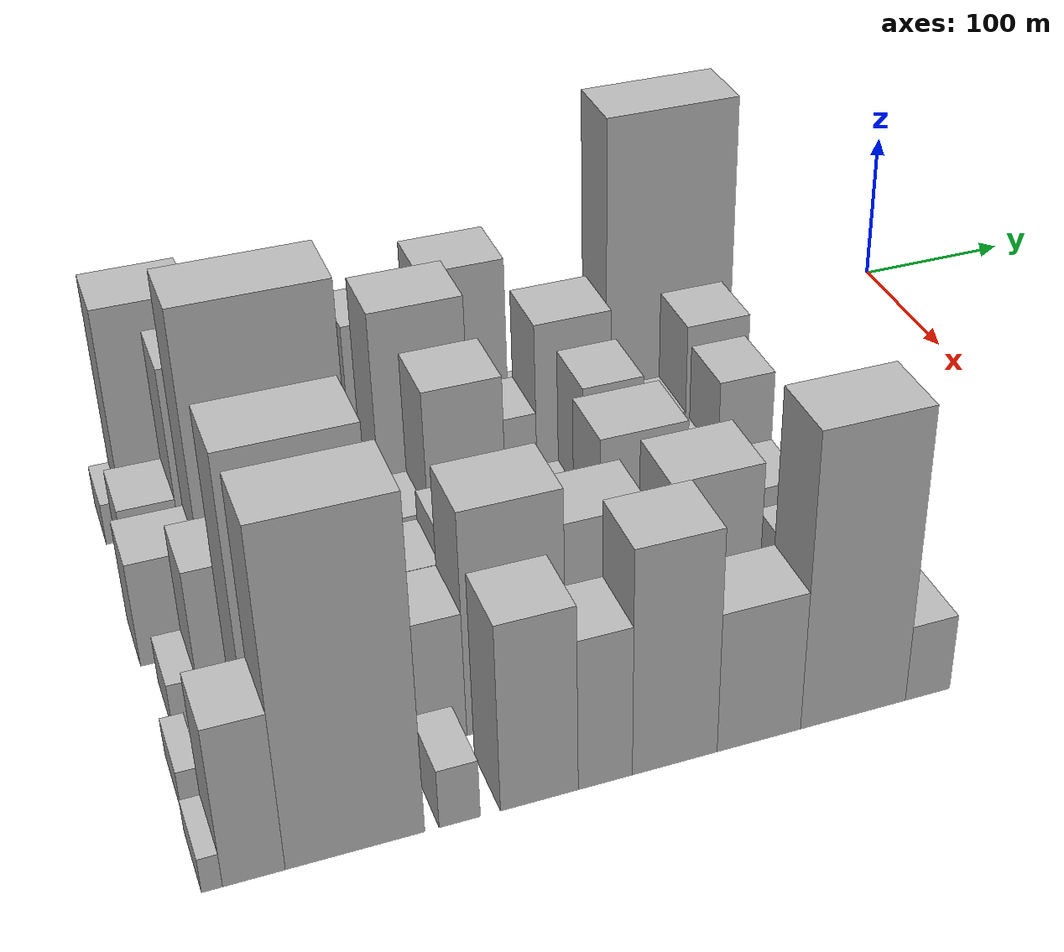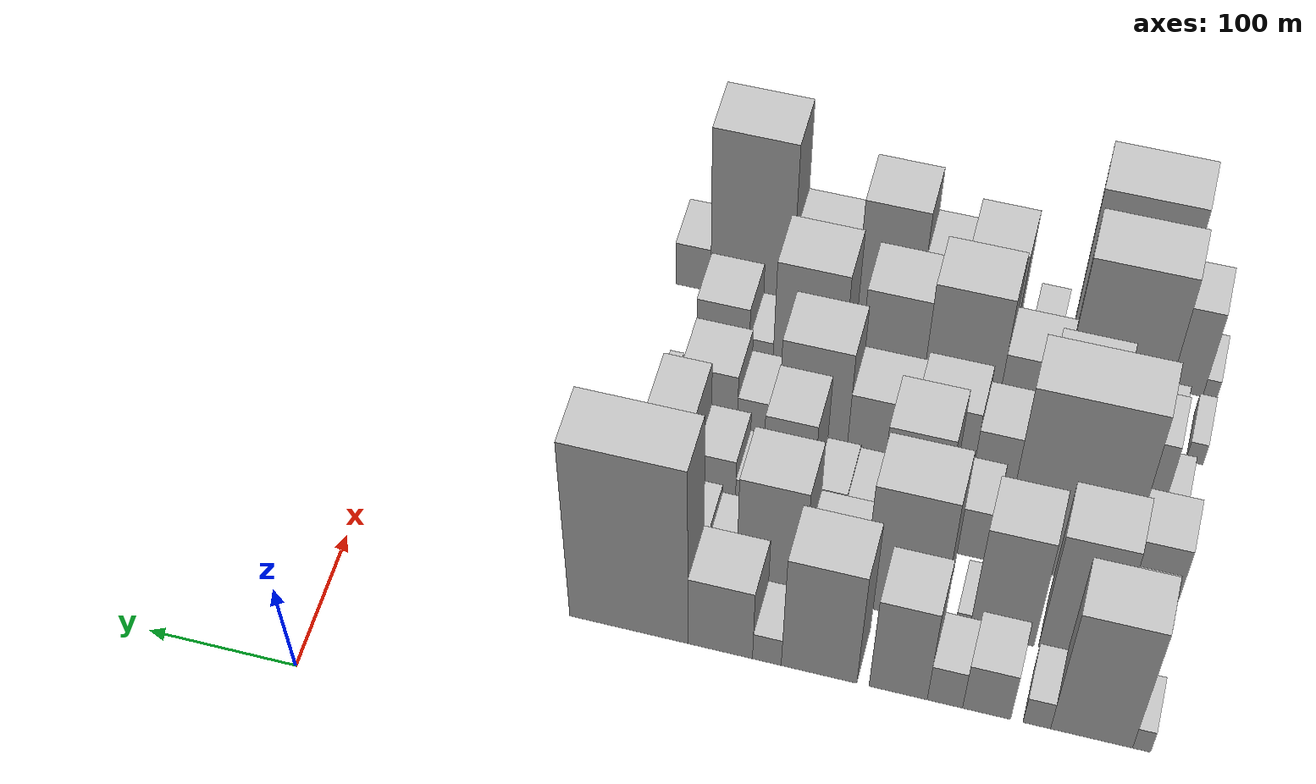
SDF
<sdf version="1.6">
 <world name="default">
  <model name="building_13">
   <static>1</static>
   <pose>100.0000 -533.1049 0 0.000000 0.000000 0.000000</pose>
   <link name="link">
    <pose>0 0 13.50 0 0 0</pose>
    <collision name="collision"><geometry><box><size>40.0000 11.3927 27.0000</size></box></geometry></collision>
    <visual name="visual">
     <cast_shadows>0</cast_shadows>
     <geometry><box><size>40.0000 11.3927 27.0000</size></box></geometry>
     <material>
      <script>
       <uri>model://HANNAS_wall/materials/scripts</uri>
       <uri>model://HANNAS_wall/materials/textures</uri>
       <name>vrc/HANNAS_wall</name>
      </script>
     </material>
    </visual>
   </link>
  </model>
  <model name="building_14">
   <static>1</static>
   <pose>100.0000 -501.3403 0 0.000000 0.000000 0.000000</pose>
   <link name="link">
    <pose>0 0 75.00 0 0 0</pose>
    <collision name="collision"><geometry><box><size>40.0000 52.1366 150.0000</size></box></geometry></collision>
    <visual name="visual">
     <cast_shadows>0</cast_shadows>
     <geometry><box><size>40.0000 52.1366 150.0000</size></box></geometry>
     <material>
      <script>
       <uri>model://HANNAS_wall/materials/scripts</uri>
       <uri>model://HANNAS_wall/materials/textures</uri>
       <name>vrc/HANNAS_wall</name>
      </script>
     </material>
    </visual>
   </link>
  </model>
  <model name="building_15">
   <static>1</static>
   <pose>100.0000 -466.4568 0 0.000000 0.000000 0.000000</pose>
   <link name="link">
    <pose>0 0 16.50 0 0 0</pose>
    <collision name="collision"><geometry><box><size>40.0000 17.6303 33.0000</size></box></geometry></collision>
    <visual name="visual">
     <cast_shadows>0</cast_shadows>
     <geometry><box><size>40.0000 17.6303 33.0000</size></box></geometry>
     <material>
      <script>
       <uri>model://HANNAS_wall/materials/scripts</uri>
       <uri>model://HANNAS_wall/materials/textures</uri>
       <name>vrc/HANNAS_wall</name>
      </script>
     </material>
    </visual>
   </link>
  </model>
  <model name="building_16">
   <static>1</static>
   <pose>100.0000 -434.1845 0 0.000000 0.000000 0.000000</pose>
   <link name="link">
    <pose>0 0 28.50 0 0 0</pose>
    <collision name="collision"><geometry><box><size>40.0000 30.9145 57.0000</size></box></geometry></collision>
    <visual name="visual">
     <cast_shadows>0</cast_shadows>
     <geometry><box><size>40.0000 30.9145 57.0000</size></box></geometry>
     <material>
      <script>
       <uri>model://HANNAS_wall/materials/scripts</uri>
       <uri>model://HANNAS_wall/materials/textures</uri>
       <name>vrc/HANNAS_wall</name>
      </script>
     </material>
    </visual>
   </link>
  </model>
  <model name="building_17">
   <static>1</static>
   <pose>100.0000 -407.2969 0 0.000000 0.000000 0.000000</pose>
   <link name="link">
    <pose>0 0 22.50 0 0 0</pose>
    <collision name="collision"><geometry><box><size>40.0000 22.8605 45.0000</size></box></geometry></collision>
    <visual name="visual">
     <cast_shadows>0</cast_shadows>
     <geometry><box><size>40.0000 22.8605 45.0000</size></box></geometry>
     <material>
      <script>
       <uri>model://HANNAS_wall/materials/scripts</uri>
       <uri>model://HANNAS_wall/materials/textures</uri>
       <name>vrc/HANNAS_wall</name>
      </script>
     </material>
    </visual>
   </link>
  </model>
  <model name="building_18">
   <static>1</static>
   <pose>100.0000 -376.9645 0 0.000000 0.000000 0.000000</pose>
   <link name="link">
    <pose>0 0 55.50 0 0 0</pose>
    <collision name="collision"><geometry><box><size>40.0000 37.8044 111.0000</size></box></geometry></collision>
    <visual name="visual">
     <cast_shadows>0</cast_shadows>
     <geometry><box><size>40.0000 37.8044 111.0000</size></box></geometry>
     <material>
      <script>
       <uri>model://HANNAS_wall/materials/scripts</uri>
       <uri>model://HANNAS_wall/materials/textures</uri>
       <name>vrc/HANNAS_wall</name>
      </script>
     </material>
    </visual>
   </link>
  </model>
  <model name="building_19">
   <static>1</static>
   <pose>100.0000 -325.2309 0 0.000000 0.000000 0.000000</pose>
   <link name="link">
    <pose>0 0 67.50 0 0 0</pose>
    <collision name="collision"><geometry><box><size>40.0000 49.6627 135.0000</size></box></geometry></collision>
    <visual name="visual">
     <cast_shadows>0</cast_shadows>
     <geometry><box><size>40.0000 49.6627 135.0000</size></box></geometry>
     <material>
      <script>
       <uri>model://HANNAS_wall/materials/scripts</uri>
       <uri>model://HANNAS_wall/materials/textures</uri>
       <name>vrc/HANNAS_wall</name>
      </script>
     </material>
    </visual>
   </link>
  </model>
  <model name="building_20">
   <static>1</static>
   <pose>100.0000 -290.9320 0 0.000000 0.000000 0.000000</pose>
   <link name="link">
    <pose>0 0 16.50 0 0 0</pose>
    <collision name="collision"><geometry><box><size>40.0000 18.9351 33.0000</size></box></geometry></collision>
    <visual name="visual">
     <cast_shadows>0</cast_shadows>
     <geometry><box><size>40.0000 18.9351 33.0000</size></box></geometry>
     <material>
      <script>
       <uri>model://HANNAS_wall/materials/scripts</uri>
       <uri>model://HANNAS_wall/materials/textures</uri>
       <name>vrc/HANNAS_wall</name>
      </script>
     </material>
    </visual>
   </link>
  </model>
  <model name="building_21">
   <static>1</static>
   <pose>100.0000 -260.0530 0 0.000000 0.000000 0.000000</pose>
   <link name="link">
    <pose>0 0 42.00 0 0 0</pose>
    <collision name="collision"><geometry><box><size>40.0000 42.8229 84.0000</size></box></geometry></collision>
    <visual name="visual">
     <cast_shadows>0</cast_shadows>
     <geometry><box><size>40.0000 42.8229 84.0000</size></box></geometry>
     <material>
      <script>
       <uri>model://HANNAS_wall/materials/scripts</uri>
       <uri>model://HANNAS_wall/materials/textures</uri>
       <name>vrc/HANNAS_wall</name>
      </script>
     </material>
    </visual>
   </link>
  </model>
  <model name="building_22">
   <static>1</static>
   <pose>100.0000 -198.9923 0 0.000000 0.000000 0.000000</pose>
   <link name="link">
    <pose>0 0 105.00 0 0 0</pose>
    <collision name="collision"><geometry><box><size>40.0000 79.2986 210.0000</size></box></geometry></collision>
    <visual name="visual">
     <cast_shadows>0</cast_shadows>
     <geometry><box><size>40.0000 79.2986 210.0000</size></box></geometry>
     <material>
      <script>
       <uri>model://HANNAS_wall/materials/scripts</uri>
       <uri>model://HANNAS_wall/materials/textures</uri>
       <name>vrc/HANNAS_wall</name>
      </script>
     </material>
    </visual>
   </link>
  </model>
  <model name="building_63">
   <static>1</static>
   <pose>155.0000 -519.2142 0 0.000000 0.000000 0.000000</pose>
   <link name="link">
    <pose>0 0 30.00 0 0 0</pose>
    <collision name="collision"><geometry><box><size>40.0000 30.6745 60.0000</size></box></geometry></collision>
    <visual name="visual">
     <cast_shadows>0</cast_shadows>
     <geometry><box><size>40.0000 30.6745 60.0000</size></box></geometry>
     <material>
      <script>
       <uri>model://HANNAS_wall/materials/scripts</uri>
       <uri>model://HANNAS_wall/materials/textures</uri>
       <name>vrc/HANNAS_wall</name>
      </script>
     </material>
    </visual>
   </link>
  </model>
  <model name="building_64">
   <static>1</static>
   <pose>155.0000 -480.6251 0 0.000000 0.000000 0.000000</pose>
   <link name="link">
    <pose>0 0 70.50 0 0 0</pose>
    <collision name="collision"><geometry><box><size>40.0000 46.5038 141.0000</size></box></geometry></collision>
    <visual name="visual">
     <cast_shadows>0</cast_shadows>
     <geometry><box><size>40.0000 46.5038 141.0000</size></box></geometry>
     <material>
      <script>
       <uri>model://HANNAS_wall/materials/scripts</uri>
       <uri>model://HANNAS_wall/materials/textures</uri>
       <name>vrc/HANNAS_wall</name>
      </script>
     </material>
    </visual>
   </link>
  </model>
  <model name="building_65">
   <static>1</static>
   <pose>155.0000 -433.2379 0 0.000000 0.000000 0.000000</pose>
   <link name="link">
    <pose>0 0 64.50 0 0 0</pose>
    <collision name="collision"><geometry><box><size>40.0000 42.2705 129.0000</size></box></geometry></collision>
    <visual name="visual">
     <cast_shadows>0</cast_shadows>
     <geometry><box><size>40.0000 42.2705 129.0000</size></box></geometry>
     <material>
      <script>
       <uri>model://HANNAS_wall/materials/scripts</uri>
       <uri>model://HANNAS_wall/materials/textures</uri>
       <name>vrc/HANNAS_wall</name>
      </script>
     </material>
    </visual>
   </link>
  </model>
  <model name="building_66">
   <static>1</static>
   <pose>155.0000 -407.3782 0 0.000000 0.000000 0.000000</pose>
   <link name="link">
    <pose>0 0 10.50 0 0 0</pose>
    <collision name="collision"><geometry><box><size>40.0000 9.4488 21.0000</size></box></geometry></collision>
    <visual name="visual">
     <cast_shadows>0</cast_shadows>
     <geometry><box><size>40.0000 9.4488 21.0000</size></box></geometry>
     <material>
      <script>
       <uri>model://HANNAS_wall/materials/scripts</uri>
       <uri>model://HANNAS_wall/materials/textures</uri>
       <name>vrc/HANNAS_wall</name>
      </script>
     </material>
    </visual>
   </link>
  </model>
  <model name="building_67">
   <static>1</static>
   <pose>155.0000 -367.2960 0 0.000000 0.000000 0.000000</pose>
   <link name="link">
    <pose>0 0 75.00 0 0 0</pose>
    <collision name="collision"><geometry><box><size>40.0000 52.7156 150.0000</size></box></geometry></collision>
    <visual name="visual">
     <cast_shadows>0</cast_shadows>
     <geometry><box><size>40.0000 52.7156 150.0000</size></box></geometry>
     <material>
      <script>
       <uri>model://HANNAS_wall/materials/scripts</uri>
       <uri>model://HANNAS_wall/materials/textures</uri>
       <name>vrc/HANNAS_wall</name>
      </script>
     </material>
    </visual>
   </link>
  </model>
  <model name="building_68">
   <static>1</static>
   <pose>155.0000 -321.4835 0 0.000000 0.000000 0.000000</pose>
   <link name="link">
    <pose>0 0 33.00 0 0 0</pose>
    <collision name="collision"><geometry><box><size>40.0000 38.9095 66.0000</size></box></geometry></collision>
    <visual name="visual">
     <cast_shadows>0</cast_shadows>
     <geometry><box><size>40.0000 38.9095 66.0000</size></box></geometry>
     <material>
      <script>
       <uri>model://HANNAS_wall/materials/scripts</uri>
       <uri>model://HANNAS_wall/materials/textures</uri>
       <name>vrc/HANNAS_wall</name>
      </script>
     </material>
    </visual>
   </link>
  </model>
  <model name="building_69">
   <static>1</static>
   <pose>155.0000 -279.5214 0 0.000000 0.000000 0.000000</pose>
   <link name="link">
    <pose>0 0 61.50 0 0 0</pose>
    <collision name="collision"><geometry><box><size>40.0000 45.0147 123.0000</size></box></geometry></collision>
    <visual name="visual">
     <cast_shadows>0</cast_shadows>
     <geometry><box><size>40.0000 45.0147 123.0000</size></box></geometry>
     <material>
      <script>
       <uri>model://HANNAS_wall/materials/scripts</uri>
       <uri>model://HANNAS_wall/materials/textures</uri>
       <name>vrc/HANNAS_wall</name>
      </script>
     </material>
    </visual>
   </link>
  </model>
  <model name="building_70">
   <static>1</static>
   <pose>155.0000 -247.0301 0 0.000000 0.000000 0.000000</pose>
   <link name="link">
    <pose>0 0 18.00 0 0 0</pose>
    <collision name="collision"><geometry><box><size>40.0000 19.9680 36.0000</size></box></geometry></collision>
    <visual name="visual">
     <cast_shadows>0</cast_shadows>
     <geometry><box><size>40.0000 19.9680 36.0000</size></box></geometry>
     <material>
      <script>
       <uri>model://HANNAS_wall/materials/scripts</uri>
       <uri>model://HANNAS_wall/materials/textures</uri>
       <name>vrc/HANNAS_wall</name>
      </script>
     </material>
    </visual>
   </link>
  </model>
  <model name="building_71">
   <static>1</static>
   <pose>155.0000 -224.0909 0 0.000000 0.000000 0.000000</pose>
   <link name="link">
    <pose>0 0 22.50 0 0 0</pose>
    <collision name="collision"><geometry><box><size>40.0000 25.9104 45.0000</size></box></geometry></collision>
    <visual name="visual">
     <cast_shadows>0</cast_shadows>
     <geometry><box><size>40.0000 25.9104 45.0000</size></box></geometry>
     <material>
      <script>
       <uri>model://HANNAS_wall/materials/scripts</uri>
       <uri>model://HANNAS_wall/materials/textures</uri>
       <name>vrc/HANNAS_wall</name>
      </script>
     </material>
    </visual>
   </link>
  </model>
  <model name="building_72">
   <static>1</static>
   <pose>155.0000 -192.0724 0 0.000000 0.000000 0.000000</pose>
   <link name="link">
    <pose>0 0 51.00 0 0 0</pose>
    <collision name="collision"><geometry><box><size>40.0000 38.1265 102.0000</size></box></geometry></collision>
    <visual name="visual">
     <cast_shadows>0</cast_shadows>
     <geometry><box><size>40.0000 38.1265 102.0000</size></box></geometry>
     <material>
      <script>
       <uri>model://HANNAS_wall/materials/scripts</uri>
       <uri>model://HANNAS_wall/materials/textures</uri>
       <name>vrc/HANNAS_wall</name>
      </script>
     </material>
    </visual>
   </link>
  </model>
  <model name="building_119">
   <static>1</static>
   <pose>210.0000 -520.5972 0 0.000000 0.000000 0.000000</pose>
   <link name="link">
    <pose>0 0 33.00 0 0 0</pose>
    <collision name="collision"><geometry><box><size>40.0000 37.3611 66.0000</size></box></geometry></collision>
    <visual name="visual">
     <cast_shadows>0</cast_shadows>
     <geometry><box><size>40.0000 37.3611 66.0000</size></box></geometry>
     <material>
      <script>
       <uri>model://HANNAS_wall/materials/scripts</uri>
       <uri>model://HANNAS_wall/materials/textures</uri>
       <name>vrc/HANNAS_wall</name>
      </script>
     </material>
    </visual>
   </link>
  </model>
  <model name="building_120">
   <static>1</static>
   <pose>210.0000 -461.5204 0 0.000000 0.000000 0.000000</pose>
   <link name="link">
    <pose>0 0 103.50 0 0 0</pose>
    <collision name="collision"><geometry><box><size>40.0000 80.7926 207.0000</size></box></geometry></collision>
    <visual name="visual">
     <cast_shadows>0</cast_shadows>
     <geometry><box><size>40.0000 80.7926 207.0000</size></box></geometry>
     <material>
      <script>
       <uri>model://HANNAS_wall/materials/scripts</uri>
       <uri>model://HANNAS_wall/materials/textures</uri>
       <name>vrc/HANNAS_wall</name>
      </script>
     </material>
    </visual>
   </link>
  </model>
  <model name="building_121">
   <static>1</static>
   <pose>210.0000 -397.3310 0 0.000000 0.000000 0.000000</pose>
   <link name="link">
    <pose>0 0 28.50 0 0 0</pose>
    <collision name="collision"><geometry><box><size>40.0000 31.5861 57.0000</size></box></geometry></collision>
    <visual name="visual">
     <cast_shadows>0</cast_shadows>
     <geometry><box><size>40.0000 31.5861 57.0000</size></box></geometry>
     <material>
      <script>
       <uri>model://HANNAS_wall/materials/scripts</uri>
       <uri>model://HANNAS_wall/materials/textures</uri>
       <name>vrc/HANNAS_wall</name>
      </script>
     </material>
    </visual>
   </link>
  </model>
  <model name="building_122">
   <static>1</static>
   <pose>210.0000 -359.9849 0 0.000000 0.000000 0.000000</pose>
   <link name="link">
    <pose>0 0 66.00 0 0 0</pose>
    <collision name="collision"><geometry><box><size>40.0000 43.1061 132.0000</size></box></geometry></collision>
    <visual name="visual">
     <cast_shadows>0</cast_shadows>
     <geometry><box><size>40.0000 43.1061 132.0000</size></box></geometry>
     <material>
      <script>
       <uri>model://HANNAS_wall/materials/scripts</uri>
       <uri>model://HANNAS_wall/materials/textures</uri>
       <name>vrc/HANNAS_wall</name>
      </script>
     </material>
    </visual>
   </link>
  </model>
  <model name="building_123">
   <static>1</static>
   <pose>210.0000 -327.7152 0 0.000000 0.000000 0.000000</pose>
   <link name="link">
    <pose>0 0 19.50 0 0 0</pose>
    <collision name="collision"><geometry><box><size>40.0000 21.4334 39.0000</size></box></geometry></collision>
    <visual name="visual">
     <cast_shadows>0</cast_shadows>
     <geometry><box><size>40.0000 21.4334 39.0000</size></box></geometry>
     <material>
      <script>
       <uri>model://HANNAS_wall/materials/scripts</uri>
       <uri>model://HANNAS_wall/materials/textures</uri>
       <name>vrc/HANNAS_wall</name>
      </script>
     </material>
    </visual>
   </link>
  </model>
  <model name="building_124">
   <static>1</static>
   <pose>210.0000 -305.6995 0 0.000000 0.000000 0.000000</pose>
   <link name="link">
    <pose>0 0 21.00 0 0 0</pose>
    <collision name="collision"><geometry><box><size>40.0000 22.5980 42.0000</size></box></geometry></collision>
    <visual name="visual">
     <cast_shadows>0</cast_shadows>
     <geometry><box><size>40.0000 22.5980 42.0000</size></box></geometry>
     <material>
      <script>
       <uri>model://HANNAS_wall/materials/scripts</uri>
       <uri>model://HANNAS_wall/materials/textures</uri>
       <name>vrc/HANNAS_wall</name>
      </script>
     </material>
    </visual>
   </link>
  </model>
  <model name="building_125">
   <static>1</static>
   <pose>210.0000 -277.2473 0 0.000000 0.000000 0.000000</pose>
   <link name="link">
    <pose>0 0 57.00 0 0 0</pose>
    <collision name="collision"><geometry><box><size>40.0000 34.3065 114.0000</size></box></geometry></collision>
    <visual name="visual">
     <cast_shadows>0</cast_shadows>
     <geometry><box><size>40.0000 34.3065 114.0000</size></box></geometry>
     <material>
      <script>
       <uri>model://HANNAS_wall/materials/scripts</uri>
       <uri>model://HANNAS_wall/materials/textures</uri>
       <name>vrc/HANNAS_wall</name>
      </script>
     </material>
    </visual>
   </link>
  </model>
  <model name="building_126">
   <static>1</static>
   <pose>210.0000 -251.1494 0 0.000000 0.000000 0.000000</pose>
   <link name="link">
    <pose>0 0 15.00 0 0 0</pose>
    <collision name="collision"><geometry><box><size>40.0000 17.8892 30.0000</size></box></geometry></collision>
    <visual name="visual">
     <cast_shadows>0</cast_shadows>
     <geometry><box><size>40.0000 17.8892 30.0000</size></box></geometry>
     <material>
      <script>
       <uri>model://HANNAS_wall/materials/scripts</uri>
       <uri>model://HANNAS_wall/materials/textures</uri>
       <name>vrc/HANNAS_wall</name>
      </script>
     </material>
    </visual>
   </link>
  </model>
  <model name="building_127">
   <static>1</static>
   <pose>210.0000 -228.7052 0 0.000000 0.000000 0.000000</pose>
   <link name="link">
    <pose>0 0 25.50 0 0 0</pose>
    <collision name="collision"><geometry><box><size>40.0000 26.9991 51.0000</size></box></geometry></collision>
    <visual name="visual">
     <cast_shadows>0</cast_shadows>
     <geometry><box><size>40.0000 26.9991 51.0000</size></box></geometry>
     <material>
      <script>
       <uri>model://HANNAS_wall/materials/scripts</uri>
       <uri>model://HANNAS_wall/materials/textures</uri>
       <name>vrc/HANNAS_wall</name>
      </script>
     </material>
    </visual>
   </link>
  </model>
  <model name="building_128">
   <static>1</static>
   <pose>210.0000 -199.0584 0 0.000000 0.000000 0.000000</pose>
   <link name="link">
    <pose>0 0 49.50 0 0 0</pose>
    <collision name="collision"><geometry><box><size>40.0000 32.2944 99.0000</size></box></geometry></collision>
    <visual name="visual">
     <cast_shadows>0</cast_shadows>
     <geometry><box><size>40.0000 32.2944 99.0000</size></box></geometry>
     <material>
      <script>
       <uri>model://HANNAS_wall/materials/scripts</uri>
       <uri>model://HANNAS_wall/materials/textures</uri>
       <name>vrc/HANNAS_wall</name>
      </script>
     </material>
    </visual>
   </link>
  </model>
  <model name="building_170">
   <static>1</static>
   <pose>265.0000 -525.5077 0 0.000000 0.000000 0.000000</pose>
   <link name="link">
    <pose>0 0 15.00 0 0 0</pose>
    <collision name="collision"><geometry><box><size>40.0000 15.0167 30.0000</size></box></geometry></collision>
    <visual name="visual">
     <cast_shadows>0</cast_shadows>
     <geometry><box><size>40.0000 15.0167 30.0000</size></box></geometry>
     <material>
      <script>
       <uri>model://HANNAS_wall/materials/scripts</uri>
       <uri>model://HANNAS_wall/materials/textures</uri>
       <name>vrc/HANNAS_wall</name>
      </script>
     </material>
    </visual>
   </link>
  </model>
  <model name="building_171">
   <static>1</static>
   <pose>265.0000 -501.1151 0 0.000000 0.000000 0.000000</pose>
   <link name="link">
    <pose>0 0 48.00 0 0 0</pose>
    <collision name="collision"><geometry><box><size>40.0000 33.7684 96.0000</size></box></geometry></collision>
    <visual name="visual">
     <cast_shadows>0</cast_shadows>
     <geometry><box><size>40.0000 33.7684 96.0000</size></box></geometry>
     <material>
      <script>
       <uri>model://HANNAS_wall/materials/scripts</uri>
       <uri>model://HANNAS_wall/materials/textures</uri>
       <name>vrc/HANNAS_wall</name>
      </script>
     </material>
    </visual>
   </link>
  </model>
  <model name="building_172">
   <static>1</static>
   <pose>265.0000 -452.7904 0 0.000000 0.000000 0.000000</pose>
   <link name="link">
    <pose>0 0 70.50 0 0 0</pose>
    <collision name="collision"><geometry><box><size>40.0000 46.8810 141.0000</size></box></geometry></collision>
    <visual name="visual">
     <cast_shadows>0</cast_shadows>
     <geometry><box><size>40.0000 46.8810 141.0000</size></box></geometry>
     <material>
      <script>
       <uri>model://HANNAS_wall/materials/scripts</uri>
       <uri>model://HANNAS_wall/materials/textures</uri>
       <name>vrc/HANNAS_wall</name>
      </script>
     </material>
    </visual>
   </link>
  </model>
  <model name="building_173">
   <static>1</static>
   <pose>265.0000 -408.3719 0 0.000000 0.000000 0.000000</pose>
   <link name="link">
    <pose>0 0 33.00 0 0 0</pose>
    <collision name="collision"><geometry><box><size>40.0000 33.9560 66.0000</size></box></geometry></collision>
    <visual name="visual">
     <cast_shadows>0</cast_shadows>
     <geometry><box><size>40.0000 33.9560 66.0000</size></box></geometry>
     <material>
      <script>
       <uri>model://HANNAS_wall/materials/scripts</uri>
       <uri>model://HANNAS_wall/materials/textures</uri>
       <name>vrc/HANNAS_wall</name>
      </script>
     </material>
    </visual>
   </link>
  </model>
  <model name="building_174">
   <static>1</static>
   <pose>265.0000 -369.8326 0 0.000000 0.000000 0.000000</pose>
   <link name="link">
    <pose>0 0 42.00 0 0 0</pose>
    <collision name="collision"><geometry><box><size>40.0000 43.1227 84.0000</size></box></geometry></collision>
    <visual name="visual">
     <cast_shadows>0</cast_shadows>
     <geometry><box><size>40.0000 43.1227 84.0000</size></box></geometry>
     <material>
      <script>
       <uri>model://HANNAS_wall/materials/scripts</uri>
       <uri>model://HANNAS_wall/materials/textures</uri>
       <name>vrc/HANNAS_wall</name>
      </script>
     </material>
    </visual>
   </link>
  </model>
  <model name="building_175">
   <static>1</static>
   <pose>265.0000 -326.9108 0 0.000000 0.000000 0.000000</pose>
   <link name="link">
    <pose>0 0 37.50 0 0 0</pose>
    <collision name="collision"><geometry><box><size>40.0000 42.7208 75.0000</size></box></geometry></collision>
    <visual name="visual">
     <cast_shadows>0</cast_shadows>
     <geometry><box><size>40.0000 42.7208 75.0000</size></box></geometry>
     <material>
      <script>
       <uri>model://HANNAS_wall/materials/scripts</uri>
       <uri>model://HANNAS_wall/materials/textures</uri>
       <name>vrc/HANNAS_wall</name>
      </script>
     </material>
    </visual>
   </link>
  </model>
  <model name="building_176">
   <static>1</static>
   <pose>265.0000 -281.6138 0 0.000000 0.000000 0.000000</pose>
   <link name="link">
    <pose>0 0 60.00 0 0 0</pose>
    <collision name="collision"><geometry><box><size>40.0000 47.8732 120.0000</size></box></geometry></collision>
    <visual name="visual">
     <cast_shadows>0</cast_shadows>
     <geometry><box><size>40.0000 47.8732 120.0000</size></box></geometry>
     <material>
      <script>
       <uri>model://HANNAS_wall/materials/scripts</uri>
       <uri>model://HANNAS_wall/materials/textures</uri>
       <name>vrc/HANNAS_wall</name>
      </script>
     </material>
    </visual>
   </link>
  </model>
  <model name="building_177">
   <static>1</static>
   <pose>265.0000 -241.5778 0 0.000000 0.000000 0.000000</pose>
   <link name="link">
    <pose>0 0 21.00 0 0 0</pose>
    <collision name="collision"><geometry><box><size>40.0000 24.1989 42.0000</size></box></geometry></collision>
    <visual name="visual">
     <cast_shadows>0</cast_shadows>
     <geometry><box><size>40.0000 24.1989 42.0000</size></box></geometry>
     <material>
      <script>
       <uri>model://HANNAS_wall/materials/scripts</uri>
       <uri>model://HANNAS_wall/materials/textures</uri>
       <name>vrc/HANNAS_wall</name>
      </script>
     </material>
    </visual>
   </link>
  </model>
  <model name="building_178">
   <static>1</static>
   <pose>265.0000 -209.9898 0 0.000000 0.000000 0.000000</pose>
   <link name="link">
    <pose>0 0 33.00 0 0 0</pose>
    <collision name="collision"><geometry><box><size>40.0000 38.9771 66.0000</size></box></geometry></collision>
    <visual name="visual">
     <cast_shadows>0</cast_shadows>
     <geometry><box><size>40.0000 38.9771 66.0000</size></box></geometry>
     <material>
      <script>
       <uri>model://HANNAS_wall/materials/scripts</uri>
       <uri>model://HANNAS_wall/materials/textures</uri>
       <name>vrc/HANNAS_wall</name>
      </script>
     </material>
    </visual>
   </link>
  </model>
  <model name="building_179">
   <static>1</static>
   <pose>265.0000 -176.7194 0 0.000000 0.000000 0.000000</pose>
   <link name="link">
    <pose>0 0 10.50 0 0 0</pose>
    <collision name="collision"><geometry><box><size>40.0000 9.5638 21.0000</size></box></geometry></collision>
    <visual name="visual">
     <cast_shadows>0</cast_shadows>
     <geometry><box><size>40.0000 9.5638 21.0000</size></box></geometry>
     <material>
      <script>
       <uri>model://HANNAS_wall/materials/scripts</uri>
       <uri>model://HANNAS_wall/materials/textures</uri>
       <name>vrc/HANNAS_wall</name>
      </script>
     </material>
    </visual>
   </link>
  </model>
  <model name="building_221">
   <static>1</static>
   <pose>320.0000 -533.9635 0 0.000000 0.000000 0.000000</pose>
   <link name="link">
    <pose>0 0 12.00 0 0 0</pose>
    <collision name="collision"><geometry><box><size>40.0000 11.7083 24.0000</size></box></geometry></collision>
    <visual name="visual">
     <cast_shadows>0</cast_shadows>
     <geometry><box><size>40.0000 11.7083 24.0000</size></box></geometry>
     <material>
      <script>
       <uri>model://HANNAS_wall/materials/scripts</uri>
       <uri>model://HANNAS_wall/materials/textures</uri>
       <name>vrc/HANNAS_wall</name>
      </script>
     </material>
    </visual>
   </link>
  </model>
  <model name="building_222">
   <static>1</static>
   <pose>320.0000 -512.7861 0 0.000000 0.000000 0.000000</pose>
   <link name="link">
    <pose>0 0 15.00 0 0 0</pose>
    <collision name="collision"><geometry><box><size>40.0000 16.6466 30.0000</size></box></geometry></collision>
    <visual name="visual">
     <cast_shadows>0</cast_shadows>
     <geometry><box><size>40.0000 16.6466 30.0000</size></box></geometry>
     <material>
      <script>
       <uri>model://HANNAS_wall/materials/scripts</uri>
       <uri>model://HANNAS_wall/materials/textures</uri>
       <name>vrc/HANNAS_wall</name>
      </script>
     </material>
    </visual>
   </link>
  </model>
  <model name="building_223">
   <static>1</static>
   <pose>320.0000 -471.1772 0 0.000000 0.000000 0.000000</pose>
   <link name="link">
    <pose>0 0 99.00 0 0 0</pose>
    <collision name="collision"><geometry><box><size>40.0000 66.5712 198.0000</size></box></geometry></collision>
    <visual name="visual">
     <cast_shadows>0</cast_shadows>
     <geometry><box><size>40.0000 66.5712 198.0000</size></box></geometry>
     <material>
      <script>
       <uri>model://HANNAS_wall/materials/scripts</uri>
       <uri>model://HANNAS_wall/materials/textures</uri>
       <name>vrc/HANNAS_wall</name>
      </script>
     </material>
    </visual>
   </link>
  </model>
  <model name="building_224">
   <static>1</static>
   <pose>320.0000 -417.6750 0 0.000000 0.000000 0.000000</pose>
   <link name="link">
    <pose>0 0 39.00 0 0 0</pose>
    <collision name="collision"><geometry><box><size>40.0000 40.4331 78.0000</size></box></geometry></collision>
    <visual name="visual">
     <cast_shadows>0</cast_shadows>
     <geometry><box><size>40.0000 40.4331 78.0000</size></box></geometry>
     <material>
      <script>
       <uri>model://HANNAS_wall/materials/scripts</uri>
       <uri>model://HANNAS_wall/materials/textures</uri>
       <name>vrc/HANNAS_wall</name>
      </script>
     </material>
    </visual>
   </link>
  </model>
  <model name="building_225">
   <static>1</static>
   <pose>320.0000 -371.2092 0 0.000000 0.000000 0.000000</pose>
   <link name="link">
    <pose>0 0 69.00 0 0 0</pose>
    <collision name="collision"><geometry><box><size>40.0000 52.4985 138.0000</size></box></geometry></collision>
    <visual name="visual">
     <cast_shadows>0</cast_shadows>
     <geometry><box><size>40.0000 52.4985 138.0000</size></box></geometry>
     <material>
      <script>
       <uri>model://HANNAS_wall/materials/scripts</uri>
       <uri>model://HANNAS_wall/materials/textures</uri>
       <name>vrc/HANNAS_wall</name>
      </script>
     </material>
    </visual>
   </link>
  </model>
  <model name="building_226">
   <static>1</static>
   <pose>320.0000 -323.0426 0 0.000000 0.000000 0.000000</pose>
   <link name="link">
    <pose>0 0 58.50 0 0 0</pose>
    <collision name="collision"><geometry><box><size>40.0000 43.8347 117.0000</size></box></geometry></collision>
    <visual name="visual">
     <cast_shadows>0</cast_shadows>
     <geometry><box><size>40.0000 43.8347 117.0000</size></box></geometry>
     <material>
      <script>
       <uri>model://HANNAS_wall/materials/scripts</uri>
       <uri>model://HANNAS_wall/materials/textures</uri>
       <name>vrc/HANNAS_wall</name>
      </script>
     </material>
    </visual>
   </link>
  </model>
  <model name="building_227">
   <static>1</static>
   <pose>320.0000 -295.6469 0 0.000000 0.000000 0.000000</pose>
   <link name="link">
    <pose>0 0 12.00 0 0 0</pose>
    <collision name="collision"><geometry><box><size>40.0000 10.9567 24.0000</size></box></geometry></collision>
    <visual name="visual">
     <cast_shadows>0</cast_shadows>
     <geometry><box><size>40.0000 10.9567 24.0000</size></box></geometry>
     <material>
      <script>
       <uri>model://HANNAS_wall/materials/scripts</uri>
       <uri>model://HANNAS_wall/materials/textures</uri>
       <name>vrc/HANNAS_wall</name>
      </script>
     </material>
    </visual>
   </link>
  </model>
  <model name="building_228">
   <static>1</static>
   <pose>320.0000 -265.4552 0 0.000000 0.000000 0.000000</pose>
   <link name="link">
    <pose>0 0 63.00 0 0 0</pose>
    <collision name="collision"><geometry><box><size>40.0000 49.4267 126.0000</size></box></geometry></collision>
    <visual name="visual">
     <cast_shadows>0</cast_shadows>
     <geometry><box><size>40.0000 49.4267 126.0000</size></box></geometry>
     <material>
      <script>
       <uri>model://HANNAS_wall/materials/scripts</uri>
       <uri>model://HANNAS_wall/materials/textures</uri>
       <name>vrc/HANNAS_wall</name>
      </script>
     </material>
    </visual>
   </link>
  </model>
  <model name="building_229">
   <static>1</static>
   <pose>320.0000 -232.2772 0 0.000000 0.000000 0.000000</pose>
   <link name="link">
    <pose>0 0 16.50 0 0 0</pose>
    <collision name="collision"><geometry><box><size>40.0000 16.9293 33.0000</size></box></geometry></collision>
    <visual name="visual">
     <cast_shadows>0</cast_shadows>
     <geometry><box><size>40.0000 16.9293 33.0000</size></box></geometry>
     <material>
      <script>
       <uri>model://HANNAS_wall/materials/scripts</uri>
       <uri>model://HANNAS_wall/materials/textures</uri>
       <name>vrc/HANNAS_wall</name>
      </script>
     </material>
    </visual>
   </link>
  </model>
  <model name="building_230">
   <static>1</static>
   <pose>320.0000 -205.1995 0 0.000000 0.000000 0.000000</pose>
   <link name="link">
    <pose>0 0 33.00 0 0 0</pose>
    <collision name="collision"><geometry><box><size>40.0000 37.2260 66.0000</size></box></geometry></collision>
    <visual name="visual">
     <cast_shadows>0</cast_shadows>
     <geometry><box><size>40.0000 37.2260 66.0000</size></box></geometry>
     <material>
      <script>
       <uri>model://HANNAS_wall/materials/scripts</uri>
       <uri>model://HANNAS_wall/materials/textures</uri>
       <name>vrc/HANNAS_wall</name>
      </script>
     </material>
    </visual>
   </link>
  </model>
  <model name="building_270">
   <static>1</static>
   <pose>375.0000 -536.3532 0 0.000000 0.000000 0.000000</pose>
   <link name="link">
    <pose>0 0 10.50 0 0 0</pose>
    <collision name="collision"><geometry><box><size>40.0000 9.6894 21.0000</size></box></geometry></collision>
    <visual name="visual">
     <cast_shadows>0</cast_shadows>
     <geometry><box><size>40.0000 9.6894 21.0000</size></box></geometry>
     <material>
      <script>
       <uri>model://HANNAS_wall/materials/scripts</uri>
       <uri>model://HANNAS_wall/materials/textures</uri>
       <name>vrc/HANNAS_wall</name>
      </script>
     </material>
    </visual>
   </link>
  </model>
  <model name="building_271">
   <static>1</static>
   <pose>375.0000 -516.9762 0 0.000000 0.000000 0.000000</pose>
   <link name="link">
    <pose>0 0 48.00 0 0 0</pose>
    <collision name="collision"><geometry><box><size>40.0000 29.0646 96.0000</size></box></geometry></collision>
    <visual name="visual">
     <cast_shadows>0</cast_shadows>
     <geometry><box><size>40.0000 29.0646 96.0000</size></box></geometry>
     <material>
      <script>
       <uri>model://HANNAS_wall/materials/scripts</uri>
       <uri>model://HANNAS_wall/materials/textures</uri>
       <name>vrc/HANNAS_wall</name>
      </script>
     </material>
    </visual>
   </link>
  </model>
  <model name="building_272">
   <static>1</static>
   <pose>375.0000 -469.1048 0 0.000000 0.000000 0.000000</pose>
   <link name="link">
    <pose>0 0 99.00 0 0 0</pose>
    <collision name="collision"><geometry><box><size>40.0000 66.6781 198.0000</size></box></geometry></collision>
    <visual name="visual">
     <cast_shadows>0</cast_shadows>
     <geometry><box><size>40.0000 66.6781 198.0000</size></box></geometry>
     <material>
      <script>
       <uri>model://HANNAS_wall/materials/scripts</uri>
       <uri>model://HANNAS_wall/materials/textures</uri>
       <name>vrc/HANNAS_wall</name>
      </script>
     </material>
    </visual>
   </link>
  </model>
  <model name="building_273">
   <static>1</static>
   <pose>375.0000 -418.5899 0 0.000000 0.000000 0.000000</pose>
   <link name="link">
    <pose>0 0 18.00 0 0 0</pose>
    <collision name="collision"><geometry><box><size>40.0000 20.3517 36.0000</size></box></geometry></collision>
    <visual name="visual">
     <cast_shadows>0</cast_shadows>
     <geometry><box><size>40.0000 20.3517 36.0000</size></box></geometry>
     <material>
      <script>
       <uri>model://HANNAS_wall/materials/scripts</uri>
       <uri>model://HANNAS_wall/materials/textures</uri>
       <name>vrc/HANNAS_wall</name>
      </script>
     </material>
    </visual>
   </link>
  </model>
  <model name="building_274">
   <static>1</static>
   <pose>375.0000 -378.7161 0 0.000000 0.000000 0.000000</pose>
   <link name="link">
    <pose>0 0 57.00 0 0 0</pose>
    <collision name="collision"><geometry><box><size>40.0000 39.3960 114.0000</size></box></geometry></collision>
    <visual name="visual">
     <cast_shadows>0</cast_shadows>
     <geometry><box><size>40.0000 39.3960 114.0000</size></box></geometry>
     <material>
      <script>
       <uri>model://HANNAS_wall/materials/scripts</uri>
       <uri>model://HANNAS_wall/materials/textures</uri>
       <name>vrc/HANNAS_wall</name>
      </script>
     </material>
    </visual>
   </link>
  </model>
  <model name="building_275">
   <static>1</static>
   <pose>375.0000 -345.0532 0 0.000000 0.000000 0.000000</pose>
   <link name="link">
    <pose>0 0 46.50 0 0 0</pose>
    <collision name="collision"><geometry><box><size>40.0000 27.9296 93.0000</size></box></geometry></collision>
    <visual name="visual">
     <cast_shadows>0</cast_shadows>
     <geometry><box><size>40.0000 27.9296 93.0000</size></box></geometry>
     <material>
      <script>
       <uri>model://HANNAS_wall/materials/scripts</uri>
       <uri>model://HANNAS_wall/materials/textures</uri>
       <name>vrc/HANNAS_wall</name>
      </script>
     </material>
    </visual>
   </link>
  </model>
  <model name="building_276">
   <static>1</static>
   <pose>375.0000 -308.7100 0 0.000000 0.000000 0.000000</pose>
   <link name="link">
    <pose>0 0 69.00 0 0 0</pose>
    <collision name="collision"><geometry><box><size>40.0000 44.7569 138.0000</size></box></geometry></collision>
    <visual name="visual">
     <cast_shadows>0</cast_shadows>
     <geometry><box><size>40.0000 44.7569 138.0000</size></box></geometry>
     <material>
      <script>
       <uri>model://HANNAS_wall/materials/scripts</uri>
       <uri>model://HANNAS_wall/materials/textures</uri>
       <name>vrc/HANNAS_wall</name>
      </script>
     </material>
    </visual>
   </link>
  </model>
  <model name="building_277">
   <static>1</static>
   <pose>375.0000 -263.6854 0 0.000000 0.000000 0.000000</pose>
   <link name="link">
    <pose>0 0 43.50 0 0 0</pose>
    <collision name="collision"><geometry><box><size>40.0000 45.2922 87.0000</size></box></geometry></collision>
    <visual name="visual">
     <cast_shadows>0</cast_shadows>
     <geometry><box><size>40.0000 45.2922 87.0000</size></box></geometry>
     <material>
      <script>
       <uri>model://HANNAS_wall/materials/scripts</uri>
       <uri>model://HANNAS_wall/materials/textures</uri>
       <name>vrc/HANNAS_wall</name>
      </script>
     </material>
    </visual>
   </link>
  </model>
  <model name="building_278">
   <static>1</static>
   <pose>375.0000 -211.6889 0 0.000000 0.000000 0.000000</pose>
   <link name="link">
    <pose>0 0 90.00 0 0 0</pose>
    <collision name="collision"><geometry><box><size>40.0000 58.7008 180.0000</size></box></geometry></collision>
    <visual name="visual">
     <cast_shadows>0</cast_shadows>
     <geometry><box><size>40.0000 58.7008 180.0000</size></box></geometry>
     <material>
      <script>
       <uri>model://HANNAS_wall/materials/scripts</uri>
       <uri>model://HANNAS_wall/materials/textures</uri>
       <name>vrc/HANNAS_wall</name>
      </script>
     </material>
    </visual>
   </link>
  </model>
  <model name="building_279">
   <static>1</static>
   <pose>375.0000 -169.6557 0 0.000000 0.000000 0.000000</pose>
   <link name="link">
    <pose>0 0 24.00 0 0 0</pose>
    <collision name="collision"><geometry><box><size>40.0000 25.3654 48.0000</size></box></geometry></collision>
    <visual name="visual">
     <cast_shadows>0</cast_shadows>
     <geometry><box><size>40.0000 25.3654 48.0000</size></box></geometry>
     <material>
      <script>
       <uri>model://HANNAS_wall/materials/scripts</uri>
       <uri>model://HANNAS_wall/materials/textures</uri>
       <name>vrc/HANNAS_wall</name>
      </script>
     </material>
    </visual>
   </link>
  </model>
 </world>
</sdf>
